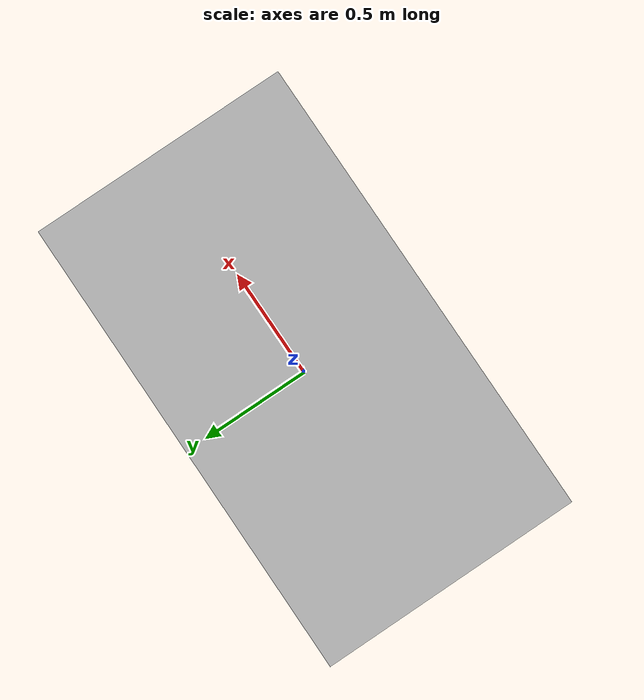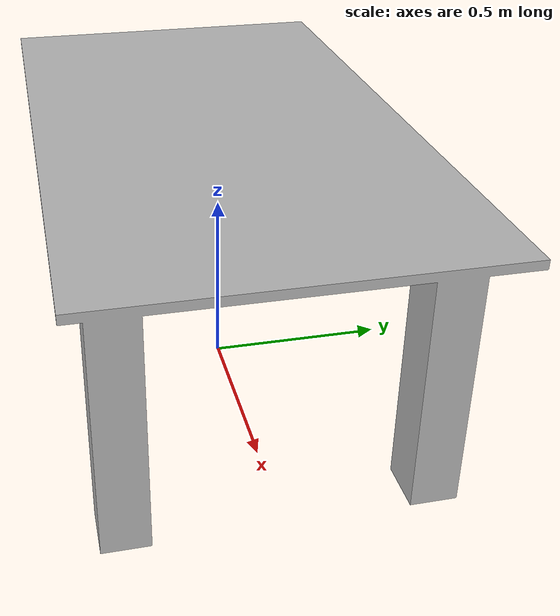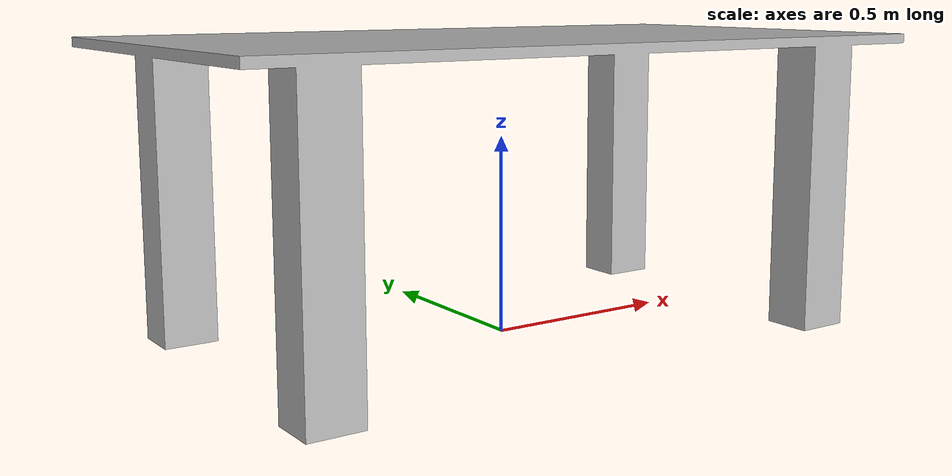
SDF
<sdf version="1.6">
    <model name="rectable">
        <static>true</static>
        <link name="body">
            <pose>0 0 0 0 0 0</pose>
            <visual name="visual">
                <geometry>
                    <mesh>
                        <uri>https://fuel.gazebosim.org/1.0/openrobotics/models/rectable/2/files/meshes/RecTable.obj</uri>
                    </mesh>
                </geometry>
            </visual>
            <collision name="collision">
                <geometry>
                    <mesh>
                        <uri>https://fuel.gazebosim.org/1.0/openrobotics/models/rectable/2/files/meshes/RecTable_Col.obj</uri>
                    </mesh>
                </geometry>
            </collision>
        </link>
    </model>
</sdf>
